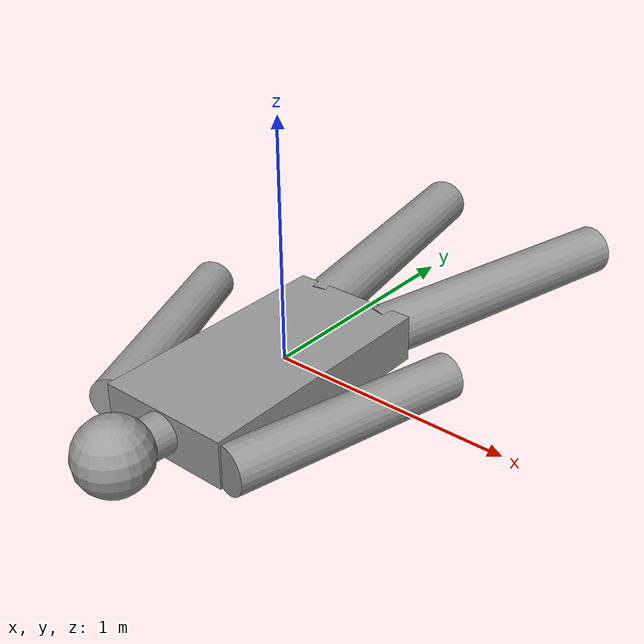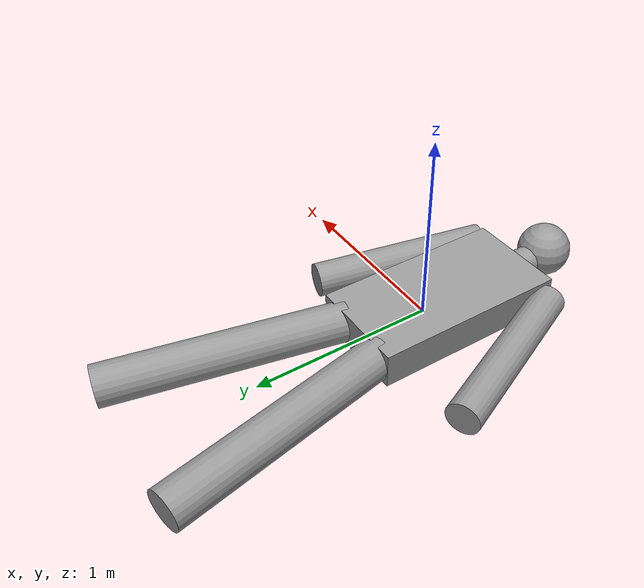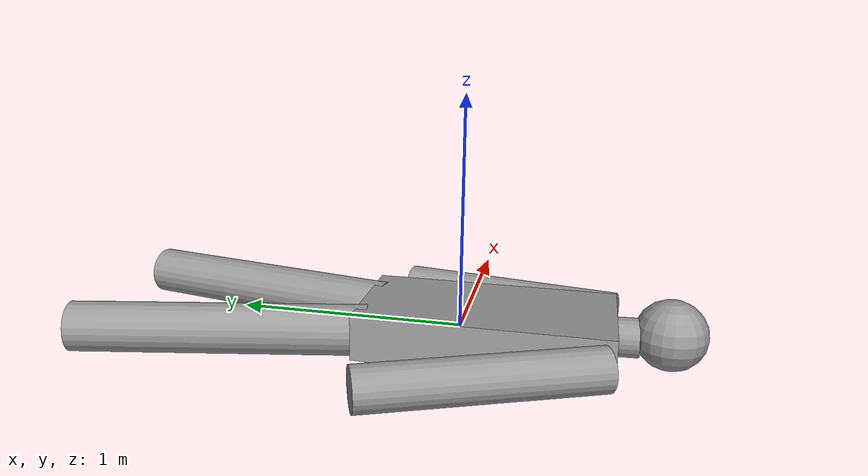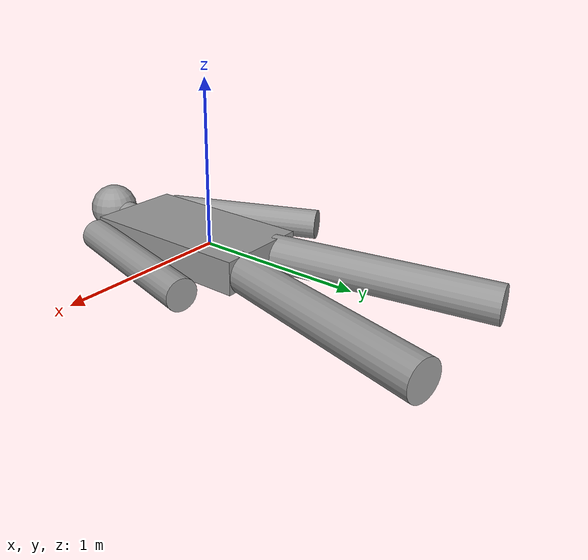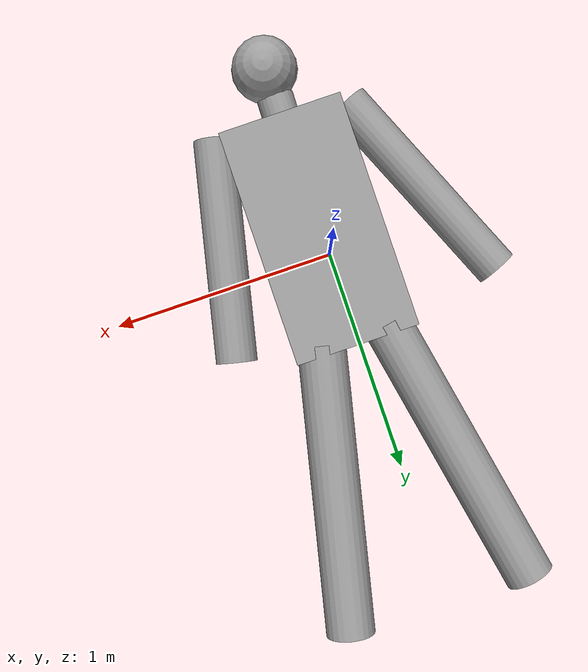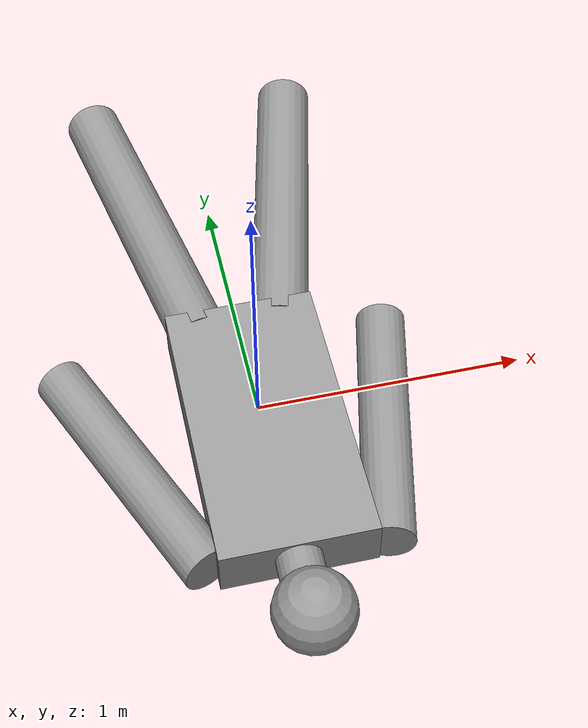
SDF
<?xml version='1.0'?>
<sdf version='1.6'>
  <model name='human'>
    <link name='link_2'>
      <inertial>
        <mass>0.00274256</mass>
        <inertia>
          <ixx>6.98489e-06</ixx>
          <ixy>0</ixy>
          <ixz>0</ixz>
          <iyy>6.98489e-06</iyy>
          <iyz>0</iyz>
          <izz>9.48338e-06</izz>
        </inertia>
        <pose frame=''>0 0 0 0 -0 0</pose>
      </inertial>
      <pose frame=''>0.004143 -0.698236 0.01353 1.53639 -0.014642 -0.02388</pose>
      <self_collide>0</self_collide>
      <enable_wind>0</enable_wind>
      <kinematic>0</kinematic>
      <visual name='visual'>
        <pose frame=''>0 0 0 0 -0 0</pose>
        <geometry>
          <cylinder>
            <radius>0.0831608</radius>
            <length>0.0990711</length>
          </cylinder>
        </geometry>
        <material>
          <lighting>1</lighting>
          <script>
            <uri>file://media/materials/scripts/gazebo.material</uri>
            <name>Gazebo/Grey</name>
          </script>
          <shader type='pixel'/>
        </material>
        <transparency>0</transparency>
        <cast_shadows>1</cast_shadows>
      </visual>
      <collision name='collision'>
        <laser_retro>0</laser_retro>
        <max_contacts>10</max_contacts>
        <pose frame=''>0 0 0 0 -0 0</pose>
        <geometry>
          <cylinder>
            <radius>0.083161</radius>
            <length>0.099071</length>
          </cylinder>
        </geometry>
        <surface>
          <friction>
            <ode>
              <mu>1</mu>
              <mu2>1</mu2>
              <fdir1>0 0 0</fdir1>
              <slip1>0</slip1>
              <slip2>0</slip2>
            </ode>
            <torsional>
              <coefficient>1</coefficient>
              <patch_radius>0</patch_radius>
              <surface_radius>0</surface_radius>
              <use_patch_radius>1</use_patch_radius>
              <ode>
                <slip>0</slip>
              </ode>
            </torsional>
          </friction>
          <bounce>
            <restitution_coefficient>0</restitution_coefficient>
            <threshold>1e+06</threshold>
          </bounce>
          <contact>
            <collide_without_contact>0</collide_without_contact>
            <collide_without_contact_bitmask>1</collide_without_contact_bitmask>
            <collide_bitmask>1</collide_bitmask>
            <ode>
              <soft_cfm>0</soft_cfm>
              <soft_erp>0.2</soft_erp>
              <kp>1e+13</kp>
              <kd>1</kd>
              <max_vel>0.01</max_vel>
              <min_depth>0</min_depth>
            </ode>
            <bullet>
              <split_impulse>1</split_impulse>
              <split_impulse_penetration_threshold>-0.01</split_impulse_penetration_threshold>
              <soft_cfm>0</soft_cfm>
              <soft_erp>0.2</soft_erp>
              <kp>1e+13</kp>
              <kd>1</kd>
            </bullet>
          </contact>
        </surface>
      </collision>
    </link>
    <link name='link_3'>
      <inertial>
        <mass>0.0260719</mass>
        <inertia>
          <ixx>0.000229246</ixx>
          <ixy>0</ixy>
          <ixz>0</ixz>
          <iyy>0.000229246</iyy>
          <iyz>0</iyz>
          <izz>0.000229246</izz>
        </inertia>
        <pose frame=''>0 0 0 0 -0 0</pose>
      </inertial>
      <pose frame=''>0.008435 -0.870567 0.038148 0 -0 0</pose>
      <self_collide>0</self_collide>
      <enable_wind>0</enable_wind>
      <kinematic>0</kinematic>
      <visual name='visual'>
        <pose frame=''>0 0 0 0 -0 0</pose>
        <geometry>
          <sphere>
            <radius>0.148263</radius>
          </sphere>
        </geometry>
        <material>
          <lighting>1</lighting>
          <script>
            <uri>file://media/materials/scripts/gazebo.material</uri>
            <name>Gazebo/Grey</name>
          </script>
          <shader type='pixel'/>
        </material>
        <transparency>0</transparency>
        <cast_shadows>1</cast_shadows>
      </visual>
      <collision name='collision'>
        <laser_retro>0</laser_retro>
        <max_contacts>10</max_contacts>
        <pose frame=''>0 0 0 0 -0 0</pose>
        <geometry>
          <sphere>
            <radius>0.148263</radius>
          </sphere>
        </geometry>
        <surface>
          <friction>
            <ode>
              <mu>1</mu>
              <mu2>1</mu2>
              <fdir1>0 0 0</fdir1>
              <slip1>0</slip1>
              <slip2>0</slip2>
            </ode>
            <torsional>
              <coefficient>1</coefficient>
              <patch_radius>0</patch_radius>
              <surface_radius>0</surface_radius>
              <use_patch_radius>1</use_patch_radius>
              <ode>
                <slip>0</slip>
              </ode>
            </torsional>
          </friction>
          <bounce>
            <restitution_coefficient>0</restitution_coefficient>
            <threshold>1e+06</threshold>
          </bounce>
          <contact>
            <collide_without_contact>0</collide_without_contact>
            <collide_without_contact_bitmask>1</collide_without_contact_bitmask>
            <collide_bitmask>1</collide_bitmask>
            <ode>
              <soft_cfm>0</soft_cfm>
              <soft_erp>0.2</soft_erp>
              <kp>1e+13</kp>
              <kd>1</kd>
              <max_vel>0.01</max_vel>
              <min_depth>0</min_depth>
            </ode>
            <bullet>
              <split_impulse>1</split_impulse>
              <split_impulse_penetration_threshold>-0.01</split_impulse_penetration_threshold>
              <soft_cfm>0</soft_cfm>
              <soft_erp>0.2</soft_erp>
              <kp>1e+13</kp>
              <kd>1</kd>
            </bullet>
          </contact>
        </surface>
      </collision>
    </link>
    <link name='link_4'>
      <inertial>
        <mass>0.0350676</mass>
        <inertia>
          <ixx>0.00299916</ixx>
          <ixy>0</ixy>
          <ixz>0</ixz>
          <iyy>0.00299916</iyy>
          <iyz>0</iyz>
          <izz>0.00015373</izz>
        </inertia>
        <pose frame=''>0 0 0 0 -0 0</pose>
      </inertial>
      <pose frame=''>0.43753 -0.16616 -0.011266 1.55407 0.003979 -0.226833</pose>
      <self_collide>0</self_collide>
      <enable_wind>0</enable_wind>
      <kinematic>0</kinematic>
      <visual name='visual'>
        <pose frame=''>0 0 0 0 -0 0</pose>
        <geometry>
          <cylinder>
            <radius>0.0936358</radius>
            <length>1</length>
          </cylinder>
        </geometry>
        <material>
          <lighting>1</lighting>
          <script>
            <uri>file://media/materials/scripts/gazebo.material</uri>
            <name>Gazebo/Grey</name>
          </script>
          <shader type='pixel'/>
        </material>
        <transparency>0</transparency>
        <cast_shadows>1</cast_shadows>
      </visual>
      <collision name='collision'>
        <laser_retro>0</laser_retro>
        <max_contacts>10</max_contacts>
        <pose frame=''>0 0 0 0 -0 0</pose>
        <geometry>
          <cylinder>
            <radius>0.093636</radius>
            <length>1</length>
          </cylinder>
        </geometry>
        <surface>
          <friction>
            <ode>
              <mu>1</mu>
              <mu2>1</mu2>
              <fdir1>0 0 0</fdir1>
              <slip1>0</slip1>
              <slip2>0</slip2>
            </ode>
            <torsional>
              <coefficient>1</coefficient>
              <patch_radius>0</patch_radius>
              <surface_radius>0</surface_radius>
              <use_patch_radius>1</use_patch_radius>
              <ode>
                <slip>0</slip>
              </ode>
            </torsional>
          </friction>
          <bounce>
            <restitution_coefficient>0</restitution_coefficient>
            <threshold>1e+06</threshold>
          </bounce>
          <contact>
            <collide_without_contact>0</collide_without_contact>
            <collide_without_contact_bitmask>1</collide_without_contact_bitmask>
            <collide_bitmask>1</collide_bitmask>
            <ode>
              <soft_cfm>0</soft_cfm>
              <soft_erp>0.2</soft_erp>
              <kp>1e+13</kp>
              <kd>1</kd>
              <max_vel>0.01</max_vel>
              <min_depth>0</min_depth>
            </ode>
            <bullet>
              <split_impulse>1</split_impulse>
              <split_impulse_penetration_threshold>-0.01</split_impulse_penetration_threshold>
              <soft_cfm>0</soft_cfm>
              <soft_erp>0.2</soft_erp>
              <kp>1e+13</kp>
              <kd>1</kd>
            </bullet>
          </contact>
        </surface>
      </collision>
    </link>
    <link name='link_4_clone'>
      <inertial>
        <mass>0.0350676</mass>
        <inertia>
          <ixx>0.00299916</ixx>
          <ixy>0</ixy>
          <ixz>0</ixz>
          <iyy>0.00299916</iyy>
          <iyz>0</iyz>
          <izz>0.00015373</izz>
        </inertia>
        <pose frame=''>0 0 0 0 -0 0</pose>
      </inertial>
      <pose frame=''>-0.497497 -0.16131 -0.011266 1.55968 0.013118 0.407511</pose>
      <self_collide>0</self_collide>
      <enable_wind>0</enable_wind>
      <kinematic>0</kinematic>
      <visual name='visual'>
        <pose frame=''>0 0 0 0 -0 0</pose>
        <geometry>
          <cylinder>
            <radius>0.0936358</radius>
            <length>1</length>
          </cylinder>
        </geometry>
        <material>
          <lighting>1</lighting>
          <script>
            <uri>file://media/materials/scripts/gazebo.material</uri>
            <name>Gazebo/Grey</name>
          </script>
          <shader type='pixel'/>
        </material>
        <transparency>0</transparency>
        <cast_shadows>1</cast_shadows>
      </visual>
      <collision name='collision'>
        <laser_retro>0</laser_retro>
        <max_contacts>10</max_contacts>
        <pose frame=''>0 0 0 0 -0 0</pose>
        <geometry>
          <cylinder>
            <radius>0.093636</radius>
            <length>1</length>
          </cylinder>
        </geometry>
        <surface>
          <friction>
            <ode>
              <mu>1</mu>
              <mu2>1</mu2>
              <fdir1>0 0 0</fdir1>
              <slip1>0</slip1>
              <slip2>0</slip2>
            </ode>
            <torsional>
              <coefficient>1</coefficient>
              <patch_radius>0</patch_radius>
              <surface_radius>0</surface_radius>
              <use_patch_radius>1</use_patch_radius>
              <ode>
                <slip>0</slip>
              </ode>
            </torsional>
          </friction>
          <bounce>
            <restitution_coefficient>0</restitution_coefficient>
            <threshold>1e+06</threshold>
          </bounce>
          <contact>
            <collide_without_contact>0</collide_without_contact>
            <collide_without_contact_bitmask>1</collide_without_contact_bitmask>
            <collide_bitmask>1</collide_bitmask>
            <ode>
              <soft_cfm>0</soft_cfm>
              <soft_erp>0.2</soft_erp>
              <kp>1e+13</kp>
              <kd>1</kd>
              <max_vel>0.01</max_vel>
              <min_depth>0</min_depth>
            </ode>
            <bullet>
              <split_impulse>1</split_impulse>
              <split_impulse_penetration_threshold>-0.01</split_impulse_penetration_threshold>
              <soft_cfm>0</soft_cfm>
              <soft_erp>0.2</soft_erp>
              <kp>1e+13</kp>
              <kd>1</kd>
            </bullet>
          </contact>
        </surface>
      </collision>
    </link>
    <link name='link_4_clone_0'>
      <inertial>
        <mass>0.0637493</mass>
        <inertia>
          <ixx>0.00926023</ixx>
          <ixy>0</ixy>
          <ixz>0</ixz>
          <iyy>0.00926023</iyy>
          <iyz>0</iyz>
          <izz>0.000389063</izz>
        </inertia>
        <pose frame=''>0 0 0 0 -0 0</pose>
      </inertial>
      <pose frame=''>0.310843 1.01076 -0.011266 1.55948 0.003979 -0.226833</pose>
      <self_collide>0</self_collide>
      <enable_wind>0</enable_wind>
      <kinematic>0</kinematic>
      <visual name='visual'>
        <pose frame=''>0 0 0 0 -0 0</pose>
        <geometry>
          <cylinder>
            <radius>0.110481</radius>
            <length>1.30633</length>
          </cylinder>
        </geometry>
        <material>
          <lighting>1</lighting>
          <script>
            <uri>file://media/materials/scripts/gazebo.material</uri>
            <name>Gazebo/Grey</name>
          </script>
          <shader type='pixel'/>
        </material>
        <transparency>0</transparency>
        <cast_shadows>1</cast_shadows>
      </visual>
      <collision name='collision'>
        <laser_retro>0</laser_retro>
        <max_contacts>10</max_contacts>
        <pose frame=''>0 0 0 0 -0 0</pose>
        <geometry>
          <cylinder>
            <radius>0.110481</radius>
            <length>1.30633</length>
          </cylinder>
        </geometry>
        <surface>
          <friction>
            <ode>
              <mu>1</mu>
              <mu2>1</mu2>
              <fdir1>0 0 0</fdir1>
              <slip1>0</slip1>
              <slip2>0</slip2>
            </ode>
            <torsional>
              <coefficient>1</coefficient>
              <patch_radius>0</patch_radius>
              <surface_radius>0</surface_radius>
              <use_patch_radius>1</use_patch_radius>
              <ode>
                <slip>0</slip>
              </ode>
            </torsional>
          </friction>
          <bounce>
            <restitution_coefficient>0</restitution_coefficient>
            <threshold>1e+06</threshold>
          </bounce>
          <contact>
            <collide_without_contact>0</collide_without_contact>
            <collide_without_contact_bitmask>1</collide_without_contact_bitmask>
            <collide_bitmask>1</collide_bitmask>
            <ode>
              <soft_cfm>0</soft_cfm>
              <soft_erp>0.2</soft_erp>
              <kp>1e+13</kp>
              <kd>1</kd>
              <max_vel>0.01</max_vel>
              <min_depth>0</min_depth>
            </ode>
            <bullet>
              <split_impulse>1</split_impulse>
              <split_impulse_penetration_threshold>-0.01</split_impulse_penetration_threshold>
              <soft_cfm>0</soft_cfm>
              <soft_erp>0.2</soft_erp>
              <kp>1e+13</kp>
              <kd>1</kd>
            </bullet>
          </contact>
        </surface>
      </collision>
    </link>
    <link name='link_4_clone_0_clone'>
      <inertial>
        <mass>0.0637493</mass>
        <inertia>
          <ixx>0.00926023</ixx>
          <ixy>0</ixy>
          <ixz>0</ixz>
          <iyy>0.00926023</iyy>
          <iyz>0</iyz>
          <izz>0.000389063</izz>
        </inertia>
        <pose frame=''>0 0 0 0 -0 0</pose>
      </inertial>
      <pose frame=''>-0.268402 1.01817 -0.011266 1.56033 0.010391 0.188569</pose>
      <self_collide>0</self_collide>
      <enable_wind>0</enable_wind>
      <kinematic>0</kinematic>
      <visual name='visual'>
        <pose frame=''>0 0 0 0 -0 0</pose>
        <geometry>
          <cylinder>
            <radius>0.110481</radius>
            <length>1.30633</length>
          </cylinder>
        </geometry>
        <material>
          <lighting>1</lighting>
          <script>
            <uri>file://media/materials/scripts/gazebo.material</uri>
            <name>Gazebo/Grey</name>
          </script>
          <shader type='pixel'/>
        </material>
        <transparency>0</transparency>
        <cast_shadows>1</cast_shadows>
      </visual>
      <collision name='collision'>
        <laser_retro>0</laser_retro>
        <max_contacts>10</max_contacts>
        <pose frame=''>0 0 0 0 -0 0</pose>
        <geometry>
          <cylinder>
            <radius>0.110481</radius>
            <length>1.30633</length>
          </cylinder>
        </geometry>
        <surface>
          <friction>
            <ode>
              <mu>1</mu>
              <mu2>1</mu2>
              <fdir1>0 0 0</fdir1>
              <slip1>0</slip1>
              <slip2>0</slip2>
            </ode>
            <torsional>
              <coefficient>1</coefficient>
              <patch_radius>0</patch_radius>
              <surface_radius>0</surface_radius>
              <use_patch_radius>1</use_patch_radius>
              <ode>
                <slip>0</slip>
              </ode>
            </torsional>
          </friction>
          <bounce>
            <restitution_coefficient>0</restitution_coefficient>
            <threshold>1e+06</threshold>
          </bounce>
          <contact>
            <collide_without_contact>0</collide_without_contact>
            <collide_without_contact_bitmask>1</collide_without_contact_bitmask>
            <collide_bitmask>1</collide_bitmask>
            <ode>
              <soft_cfm>0</soft_cfm>
              <soft_erp>0.2</soft_erp>
              <kp>1e+13</kp>
              <kd>1</kd>
              <max_vel>0.01</max_vel>
              <min_depth>0</min_depth>
            </ode>
            <bullet>
              <split_impulse>1</split_impulse>
              <split_impulse_penetration_threshold>-0.01</split_impulse_penetration_threshold>
              <soft_cfm>0</soft_cfm>
              <soft_erp>0.2</soft_erp>
              <kp>1e+13</kp>
              <kd>1</kd>
            </bullet>
          </contact>
        </surface>
      </collision>
    </link>
    <link name='link_6'>
      <inertial>
        <mass>0.119494</mass>
        <inertia>
          <ixx>0.0119192</ixx>
          <ixy>0</ixy>
          <ixz>0</ixz>
          <iyy>0.00354679</iyy>
          <iyz>0</iyz>
          <izz>0.0146928</izz>
        </inertia>
        <pose frame=''>0 0 0 0 -0 0</pose>
      </inertial>
      <pose frame=''>0.010942 -0.116021 0.002669 0 -0 0</pose>
      <self_collide>0</self_collide>
      <enable_wind>0</enable_wind>
      <kinematic>0</kinematic>
      <gravity>1</gravity>
      <visual name='visual'>
        <pose frame=''>0 0 0 0 -0 0</pose>
        <geometry>
          <box>
            <size>0.563349 1.07617 0.197027</size>
          </box>
        </geometry>
        <material>
          <lighting>1</lighting>
          <script>
            <uri>file://media/materials/scripts/gazebo.material</uri>
            <name>Gazebo/Grey</name>
          </script>
          <shader type='pixel'>
            <normal_map>__default__</normal_map>
          </shader>
        </material>
        <transparency>0</transparency>
        <cast_shadows>1</cast_shadows>
      </visual>
      <collision name='collision'>
        <laser_retro>0</laser_retro>
        <max_contacts>10</max_contacts>
        <pose frame=''>0 0 0 0 -0 0</pose>
        <geometry>
          <box>
            <size>0.563349 1.07617 0.197027</size>
          </box>
        </geometry>
        <surface>
          <friction>
            <ode>
              <mu>1</mu>
              <mu2>1</mu2>
              <fdir1>0 0 0</fdir1>
              <slip1>0</slip1>
              <slip2>0</slip2>
            </ode>
            <torsional>
              <coefficient>1</coefficient>
              <patch_radius>0</patch_radius>
              <surface_radius>0</surface_radius>
              <use_patch_radius>1</use_patch_radius>
              <ode>
                <slip>0</slip>
              </ode>
            </torsional>
          </friction>
          <bounce>
            <restitution_coefficient>0</restitution_coefficient>
            <threshold>1e+06</threshold>
          </bounce>
          <contact>
            <collide_without_contact>0</collide_without_contact>
            <collide_without_contact_bitmask>1</collide_without_contact_bitmask>
            <collide_bitmask>1</collide_bitmask>
            <ode>
              <soft_cfm>0</soft_cfm>
              <soft_erp>0.2</soft_erp>
              <kp>1e+13</kp>
              <kd>1</kd>
              <max_vel>0.01</max_vel>
              <min_depth>0</min_depth>
            </ode>
            <bullet>
              <split_impulse>1</split_impulse>
              <split_impulse_penetration_threshold>-0.01</split_impulse_penetration_threshold>
              <soft_cfm>0</soft_cfm>
              <soft_erp>0.2</soft_erp>
              <kp>1e+13</kp>
              <kd>1</kd>
            </bullet>
          </contact>
        </surface>
      </collision>
    </link>
    <static>0</static>
    <allow_auto_disable>1</allow_auto_disable>
  </model>
</sdf>
